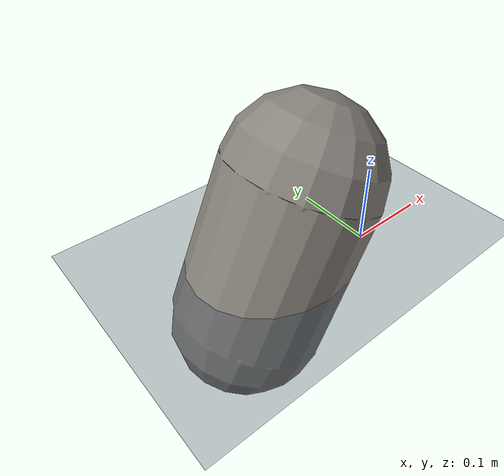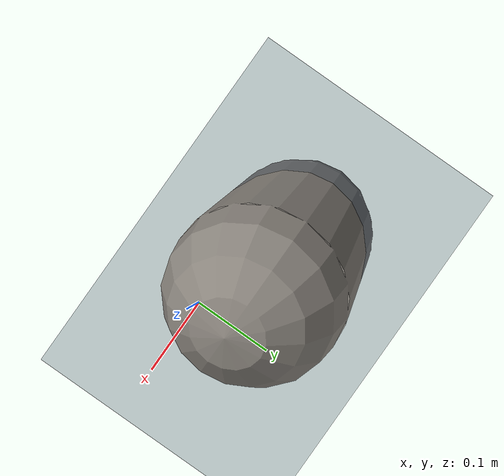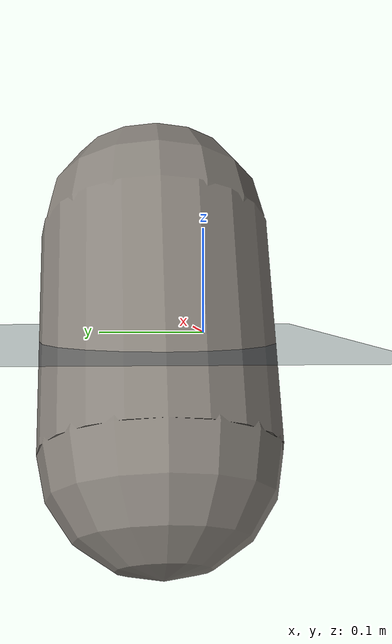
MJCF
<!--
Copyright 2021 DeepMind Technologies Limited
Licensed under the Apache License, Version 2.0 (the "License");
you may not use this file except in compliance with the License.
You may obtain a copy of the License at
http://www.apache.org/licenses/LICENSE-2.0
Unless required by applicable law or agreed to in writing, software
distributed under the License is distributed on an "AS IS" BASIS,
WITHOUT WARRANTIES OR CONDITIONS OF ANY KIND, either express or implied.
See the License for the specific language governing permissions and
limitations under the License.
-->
<mujoco>
  <compiler meshdir="F:/--CodeRepo/--CodeRepo/Research/___Mujoco/mujoco/mujoco/icse27/mujoco_rl_fuzz_2.0/.cache/repos/mujoco/model/composite/asset" texturedir="F:/--CodeRepo/--CodeRepo/Research/___Mujoco/mujoco/mujoco/icse27/mujoco_rl_fuzz_2.0/.cache/repos/mujoco/model/composite/asset" assetdir="F:/--CodeRepo/--CodeRepo/Research/___Mujoco/mujoco/mujoco/icse27/mujoco_rl_fuzz_2.0/.cache/repos/mujoco/model/composite"/>
  <statistic extent="1.5" meansize=".05"/>

  <option timestep="0.005" jacobian="sparse"/>

  <visual>
    <rgba haze="0.15 0.25 0.35 1"/>
    <quality shadowsize="4096"/>
    <map stiffness="700" shadowscale="0.5" fogstart="10" fogend="15" zfar="40" haze="0.3"/>
  </visual>

  <asset>
    <texture type="skybox" builtin="gradient" rgb1="0.3 0.5 0.7" rgb2="0 0 0" width="512" height="512"/>
    <texture name="texplane" type="2d" builtin="checker" rgb1=".2 .3 .4" rgb2=".1 0.15 0.2" width="512" height="512" mark="cross" markrgb=".8 .8 .8"/>
    <texture name="texcarpet" type="2d" file="carpet.png"/>
    <texture name="texsponge" type="2d" file="sponge.png"/>
    <texture name="texmarble" type="cube" file="marble.png"/>

    <material name="matplane" reflectance="0.3" texture="texplane" texrepeat="1 1" texuniform="true"/>
    <material name="matcarpet" texture="texcarpet"/>
    <material name="matsponge" texture="texsponge" specular="0.3"/>
    <material name="matmarble" texture="texmarble" rgba=".7 .7 .7 1"/>
  </asset>

  <worldbody>
    <light directional="true" diffuse=".4 .4 .4" specular="0.1 0.1 0.1" pos="0 0 5.0" dir="0 0 -1" castshadow="false"/>
    <light directional="true" diffuse=".6 .6 .6" specular="0.2 0.2 0.2" pos="0 0 4" dir="0 0 -1"/>

    <geom name="ground" type="plane" size="0 0 1" pos="0 0 0" quat="1 0 0 0" material="matplane" condim="1"/>

    <body mocap="true" pos="-.1 .05 0" zaxis=".5 0 1">
      <geom type="capsule" size=".1 .1" material="matmarble" group="1" condim="1"/>
    </body>
  </worldbody>
</mujoco>
